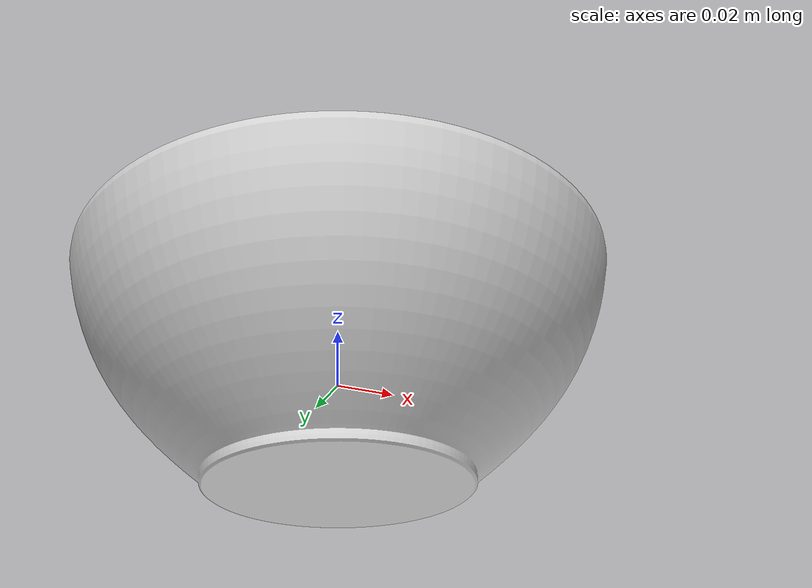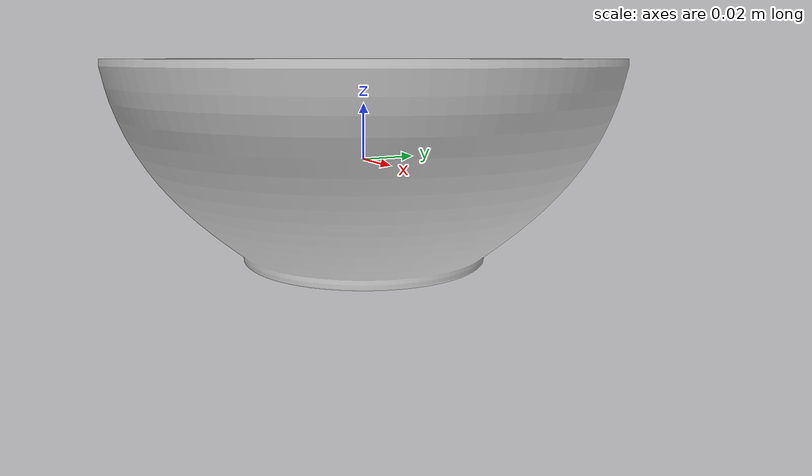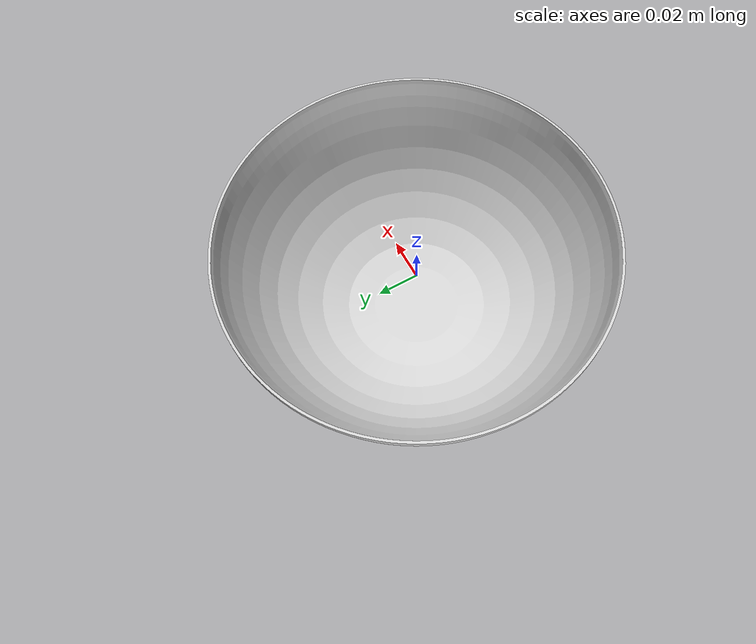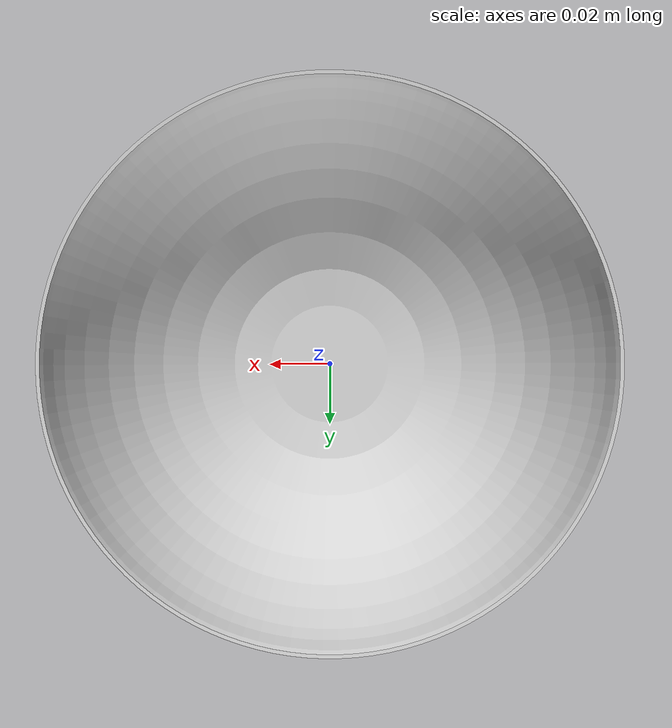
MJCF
<?xml version="1.0" ?>
<mujoco model="small_bowl">
	<compiler meshdir="small_bowl/meshes" texturedir="small_bowl/textures" angle="radian" autolimits="true" balanceinertia="true" boundmass="0.000001" boundinertia="0.000001"/>
	<default>
		<default class="visual">
			<geom contype="0" conaffinity="0"/>
		</default>
		<default class="collision">
			<geom rgba="1.0 0.0 0.0 0.0"/>
		</default>
	</default>
	<asset>
		<mesh name="BowlSmallSize" file="stl/BowlSmallSize.stl" scale="1.0 1.0 1.0"/>
		<mesh name="BowlSmallSize_001" file="stl/BowlSmallSize_001.stl" scale="1.0 1.0 1.0"/>
		<mesh name="BowlSmallSize_002" file="stl/BowlSmallSize_002.stl" scale="1.0 1.0 1.0"/>
		<mesh name="BowlSmallSize_003" file="stl/BowlSmallSize_003.stl" scale="1.0 1.0 1.0"/>
		<mesh name="BowlSmallSize_004" file="stl/BowlSmallSize_004.stl" scale="1.0 1.0 1.0"/>
		<mesh name="BowlSmallSize_005" file="stl/BowlSmallSize_005.stl" scale="1.0 1.0 1.0"/>
		<mesh name="BowlSmallSize_006" file="stl/BowlSmallSize_006.stl" scale="1.0 1.0 1.0"/>
		<mesh name="BowlSmallSize_007" file="stl/BowlSmallSize_007.stl" scale="1.0 1.0 1.0"/>
		<mesh name="BowlSmallSize_008" file="stl/BowlSmallSize_008.stl" scale="1.0 1.0 1.0"/>
		<mesh name="BowlSmallSize_009" file="stl/BowlSmallSize_009.stl" scale="1.0 1.0 1.0"/>
		<mesh name="BowlSmallSize_010" file="stl/BowlSmallSize_010.stl" scale="1.0 1.0 1.0"/>
		<mesh name="BowlSmallSize_011" file="stl/BowlSmallSize_011.stl" scale="1.0 1.0 1.0"/>
		<mesh name="BowlSmallSize_012" file="stl/BowlSmallSize_012.stl" scale="1.0 1.0 1.0"/>
		<mesh name="BowlSmallSize_013" file="stl/BowlSmallSize_013.stl" scale="1.0 1.0 1.0"/>
		<mesh name="BowlSmallSize_014" file="stl/BowlSmallSize_014.stl" scale="1.0 1.0 1.0"/>
		<mesh name="BowlSmallSize_015" file="stl/BowlSmallSize_015.stl" scale="1.0 1.0 1.0"/>
		<mesh name="BowlSmallSize_016" file="stl/BowlSmallSize_016.stl" scale="1.0 1.0 1.0"/>
		<mesh name="BowlSmallSize_017" file="stl/BowlSmallSize_017.stl" scale="1.0 1.0 1.0"/>
		<mesh name="BowlSmallSize_018" file="stl/BowlSmallSize_018.stl" scale="1.0 1.0 1.0"/>
		<mesh name="BowlSmallSize_019" file="stl/BowlSmallSize_019.stl" scale="1.0 1.0 1.0"/>
		<mesh name="BowlSmallSize_020" file="stl/BowlSmallSize_020.stl" scale="1.0 1.0 1.0"/>
		<mesh name="BowlSmallSize_021" file="stl/BowlSmallSize_021.stl" scale="1.0 1.0 1.0"/>
		<mesh name="BowlSmallSize_022" file="stl/BowlSmallSize_022.stl" scale="1.0 1.0 1.0"/>
		<mesh name="BowlSmallSize_023" file="stl/BowlSmallSize_023.stl" scale="1.0 1.0 1.0"/>
		<mesh name="BowlSmallSize_024" file="stl/BowlSmallSize_024.stl" scale="1.0 1.0 1.0"/>
		<mesh name="BowlSmallSize_025" file="stl/BowlSmallSize_025.stl" scale="1.0 1.0 1.0"/>
		<mesh name="BowlSmallSize_026" file="stl/BowlSmallSize_026.stl" scale="1.0 1.0 1.0"/>
		<mesh name="BowlSmallSize_027" file="stl/BowlSmallSize_027.stl" scale="1.0 1.0 1.0"/>
		<mesh name="BowlSmallSize_028" file="stl/BowlSmallSize_028.stl" scale="1.0 1.0 1.0"/>
		<mesh name="BowlSmallSize_029" file="stl/BowlSmallSize_029.stl" scale="1.0 1.0 1.0"/>
		<mesh name="BowlSmallSize_030" file="stl/BowlSmallSize_030.stl" scale="1.0 1.0 1.0"/>
		<mesh name="BowlSmallSize_031" file="stl/BowlSmallSize_031.stl" scale="1.0 1.0 1.0"/>
		<mesh name="BowlSmallSize_032" file="stl/BowlSmallSize_032.stl" scale="1.0 1.0 1.0"/>
		<mesh name="BowlSmallSize_033" file="stl/BowlSmallSize_033.stl" scale="1.0 1.0 1.0"/>
		<mesh name="BowlSmallSize_034" file="stl/BowlSmallSize_034.stl" scale="1.0 1.0 1.0"/>
		<mesh name="BowlSmallSize_035" file="stl/BowlSmallSize_035.stl" scale="1.0 1.0 1.0"/>
		<mesh name="BowlSmallSize_036" file="stl/BowlSmallSize_036.stl" scale="1.0 1.0 1.0"/>
		<mesh name="BowlSmallSize_037" file="stl/BowlSmallSize_037.stl" scale="1.0 1.0 1.0"/>
		<mesh name="BowlSmallSize_038" file="stl/BowlSmallSize_038.stl" scale="1.0 1.0 1.0"/>
		<mesh name="BowlSmallSize_039" file="stl/BowlSmallSize_039.stl" scale="1.0 1.0 1.0"/>
		<mesh name="BowlSmallSize_040" file="stl/BowlSmallSize_040.stl" scale="1.0 1.0 1.0"/>
		<mesh name="BowlSmallSize_041" file="stl/BowlSmallSize_041.stl" scale="1.0 1.0 1.0"/>
		<mesh name="BowlSmallSize_042" file="stl/BowlSmallSize_042.stl" scale="1.0 1.0 1.0"/>
		<mesh name="BowlSmallSize_043" file="stl/BowlSmallSize_043.stl" scale="1.0 1.0 1.0"/>
		<mesh name="BowlSmallSize_044" file="stl/BowlSmallSize_044.stl" scale="1.0 1.0 1.0"/>
		<mesh name="BowlSmallSize_045" file="stl/BowlSmallSize_045.stl" scale="1.0 1.0 1.0"/>
		<mesh name="BowlSmallSize_046" file="stl/BowlSmallSize_046.stl" scale="1.0 1.0 1.0"/>
		<mesh name="BowlSmallSize_047" file="stl/BowlSmallSize_047.stl" scale="1.0 1.0 1.0"/>
		<mesh name="BowlSmallSize_048" file="stl/BowlSmallSize_048.stl" scale="1.0 1.0 1.0"/>
		<material name="M_BowlSmallSize" rgba="0.843500018119812 0.843500018119812 0.843500018119812 1.0" emission="0.0"/>
	</asset>
	<worldbody>
		<body name="small_bowl" pos="0.0 0.0 0.0" quat="1.0 0.0 0.0 0.0">
			<inertial mass="0.3429035246372223" pos="-4.544924081528734e-08 4.074247783592e-08 -0.008956564590334892" quat="0.9975669980049133 2.051156755555894e-08 -3.3411285471629526e-07 -0.06971411406993866" diaginertia="0.0008884778362698853 0.0008884794660843909 0.0013993768952786922"/>
			<geom name="BowlSmallSize" type="mesh" pos="0.0 0.0 0.0" quat="1.0 0.0 0.0 0.0" mesh="BowlSmallSize" material="M_BowlSmallSize" class="visual"/>
			<geom name="BowlSmallSize_001" type="mesh" pos="0.0 0.0 0.0" quat="1.0 0.0 0.0 0.0" mesh="BowlSmallSize_001" class="collision"/>
			<geom name="BowlSmallSize_002" type="mesh" pos="0.0 0.0 0.0" quat="1.0 0.0 0.0 0.0" mesh="BowlSmallSize_002" class="collision"/>
			<geom name="BowlSmallSize_003" type="mesh" pos="0.0 0.0 0.0" quat="1.0 0.0 0.0 0.0" mesh="BowlSmallSize_003" class="collision"/>
			<geom name="BowlSmallSize_004" type="mesh" pos="0.0 0.0 0.0" quat="1.0 0.0 0.0 0.0" mesh="BowlSmallSize_004" class="collision"/>
			<geom name="BowlSmallSize_005" type="mesh" pos="0.0 0.0 0.0" quat="1.0 0.0 0.0 0.0" mesh="BowlSmallSize_005" class="collision"/>
			<geom name="BowlSmallSize_006" type="mesh" pos="0.0 0.0 0.0" quat="1.0 0.0 0.0 0.0" mesh="BowlSmallSize_006" class="collision"/>
			<geom name="BowlSmallSize_007" type="mesh" pos="0.0 0.0 0.0" quat="1.0 0.0 0.0 0.0" mesh="BowlSmallSize_007" class="collision"/>
			<geom name="BowlSmallSize_008" type="mesh" pos="0.0 0.0 0.0" quat="1.0 0.0 0.0 0.0" mesh="BowlSmallSize_008" class="collision"/>
			<geom name="BowlSmallSize_009" type="mesh" pos="0.0 0.0 0.0" quat="1.0 0.0 0.0 0.0" mesh="BowlSmallSize_009" class="collision"/>
			<geom name="BowlSmallSize_010" type="mesh" pos="0.0 0.0 0.0" quat="1.0 0.0 0.0 0.0" mesh="BowlSmallSize_010" class="collision"/>
			<geom name="BowlSmallSize_011" type="mesh" pos="0.0 0.0 0.0" quat="1.0 0.0 0.0 0.0" mesh="BowlSmallSize_011" class="collision"/>
			<geom name="BowlSmallSize_012" type="mesh" pos="0.0 0.0 0.0" quat="1.0 0.0 0.0 0.0" mesh="BowlSmallSize_012" class="collision"/>
			<geom name="BowlSmallSize_013" type="mesh" pos="0.0 0.0 0.0" quat="1.0 0.0 0.0 0.0" mesh="BowlSmallSize_013" class="collision"/>
			<geom name="BowlSmallSize_014" type="mesh" pos="0.0 0.0 0.0" quat="1.0 0.0 0.0 0.0" mesh="BowlSmallSize_014" class="collision"/>
			<geom name="BowlSmallSize_015" type="mesh" pos="0.0 0.0 0.0" quat="1.0 0.0 0.0 0.0" mesh="BowlSmallSize_015" class="collision"/>
			<geom name="BowlSmallSize_016" type="mesh" pos="0.0 0.0 0.0" quat="1.0 0.0 0.0 0.0" mesh="BowlSmallSize_016" class="collision"/>
			<geom name="BowlSmallSize_017" type="mesh" pos="0.0 0.0 0.0" quat="1.0 0.0 0.0 0.0" mesh="BowlSmallSize_017" class="collision"/>
			<geom name="BowlSmallSize_018" type="mesh" pos="0.0 0.0 0.0" quat="1.0 0.0 0.0 0.0" mesh="BowlSmallSize_018" class="collision"/>
			<geom name="BowlSmallSize_019" type="mesh" pos="0.0 0.0 0.0" quat="1.0 0.0 0.0 0.0" mesh="BowlSmallSize_019" class="collision"/>
			<geom name="BowlSmallSize_020" type="mesh" pos="0.0 0.0 0.0" quat="1.0 0.0 0.0 0.0" mesh="BowlSmallSize_020" class="collision"/>
			<geom name="BowlSmallSize_021" type="mesh" pos="0.0 0.0 0.0" quat="1.0 0.0 0.0 0.0" mesh="BowlSmallSize_021" class="collision"/>
			<geom name="BowlSmallSize_022" type="mesh" pos="0.0 0.0 0.0" quat="1.0 0.0 0.0 0.0" mesh="BowlSmallSize_022" class="collision"/>
			<geom name="BowlSmallSize_023" type="mesh" pos="0.0 0.0 0.0" quat="1.0 0.0 0.0 0.0" mesh="BowlSmallSize_023" class="collision"/>
			<geom name="BowlSmallSize_024" type="mesh" pos="0.0 0.0 0.0" quat="1.0 0.0 0.0 0.0" mesh="BowlSmallSize_024" class="collision"/>
			<geom name="BowlSmallSize_025" type="mesh" pos="0.0 0.0 0.0" quat="1.0 0.0 0.0 0.0" mesh="BowlSmallSize_025" class="collision"/>
			<geom name="BowlSmallSize_026" type="mesh" pos="0.0 0.0 0.0" quat="1.0 0.0 0.0 0.0" mesh="BowlSmallSize_026" class="collision"/>
			<geom name="BowlSmallSize_027" type="mesh" pos="0.0 0.0 0.0" quat="1.0 0.0 0.0 0.0" mesh="BowlSmallSize_027" class="collision"/>
			<geom name="BowlSmallSize_028" type="mesh" pos="0.0 0.0 0.0" quat="1.0 0.0 0.0 0.0" mesh="BowlSmallSize_028" class="collision"/>
			<geom name="BowlSmallSize_029" type="mesh" pos="0.0 0.0 0.0" quat="1.0 0.0 0.0 0.0" mesh="BowlSmallSize_029" class="collision"/>
			<geom name="BowlSmallSize_030" type="mesh" pos="0.0 0.0 0.0" quat="1.0 0.0 0.0 0.0" mesh="BowlSmallSize_030" class="collision"/>
			<geom name="BowlSmallSize_031" type="mesh" pos="0.0 0.0 0.0" quat="1.0 0.0 0.0 0.0" mesh="BowlSmallSize_031" class="collision"/>
			<geom name="BowlSmallSize_032" type="mesh" pos="0.0 0.0 0.0" quat="1.0 0.0 0.0 0.0" mesh="BowlSmallSize_032" class="collision"/>
			<geom name="BowlSmallSize_033" type="mesh" pos="0.0 0.0 0.0" quat="1.0 0.0 0.0 0.0" mesh="BowlSmallSize_033" class="collision"/>
			<geom name="BowlSmallSize_034" type="mesh" pos="0.0 0.0 0.0" quat="1.0 0.0 0.0 0.0" mesh="BowlSmallSize_034" class="collision"/>
			<geom name="BowlSmallSize_035" type="mesh" pos="0.0 0.0 0.0" quat="1.0 0.0 0.0 0.0" mesh="BowlSmallSize_035" class="collision"/>
			<geom name="BowlSmallSize_036" type="mesh" pos="0.0 0.0 0.0" quat="1.0 0.0 0.0 0.0" mesh="BowlSmallSize_036" class="collision"/>
			<geom name="BowlSmallSize_037" type="mesh" pos="0.0 0.0 0.0" quat="1.0 0.0 0.0 0.0" mesh="BowlSmallSize_037" class="collision"/>
			<geom name="BowlSmallSize_038" type="mesh" pos="0.0 0.0 0.0" quat="1.0 0.0 0.0 0.0" mesh="BowlSmallSize_038" class="collision"/>
			<geom name="BowlSmallSize_039" type="mesh" pos="0.0 0.0 0.0" quat="1.0 0.0 0.0 0.0" mesh="BowlSmallSize_039" class="collision"/>
			<geom name="BowlSmallSize_040" type="mesh" pos="0.0 0.0 0.0" quat="1.0 0.0 0.0 0.0" mesh="BowlSmallSize_040" class="collision"/>
			<geom name="BowlSmallSize_041" type="mesh" pos="0.0 0.0 0.0" quat="1.0 0.0 0.0 0.0" mesh="BowlSmallSize_041" class="collision"/>
			<geom name="BowlSmallSize_042" type="mesh" pos="0.0 0.0 0.0" quat="1.0 0.0 0.0 0.0" mesh="BowlSmallSize_042" class="collision"/>
			<geom name="BowlSmallSize_043" type="mesh" pos="0.0 0.0 0.0" quat="1.0 0.0 0.0 0.0" mesh="BowlSmallSize_043" class="collision"/>
			<geom name="BowlSmallSize_044" type="mesh" pos="0.0 0.0 0.0" quat="1.0 0.0 0.0 0.0" mesh="BowlSmallSize_044" class="collision"/>
			<geom name="BowlSmallSize_045" type="mesh" pos="0.0 0.0 0.0" quat="1.0 0.0 0.0 0.0" mesh="BowlSmallSize_045" class="collision"/>
			<geom name="BowlSmallSize_046" type="mesh" pos="0.0 0.0 0.0" quat="1.0 0.0 0.0 0.0" mesh="BowlSmallSize_046" class="collision"/>
			<geom name="BowlSmallSize_047" type="mesh" pos="0.0 0.0 0.0" quat="1.0 0.0 0.0 0.0" mesh="BowlSmallSize_047" class="collision"/>
			<geom name="BowlSmallSize_048" type="mesh" pos="0.0 0.0 0.0" quat="1.0 0.0 0.0 0.0" mesh="BowlSmallSize_048" class="collision"/>
		</body>
	</worldbody>
	<equality/>
</mujoco>
